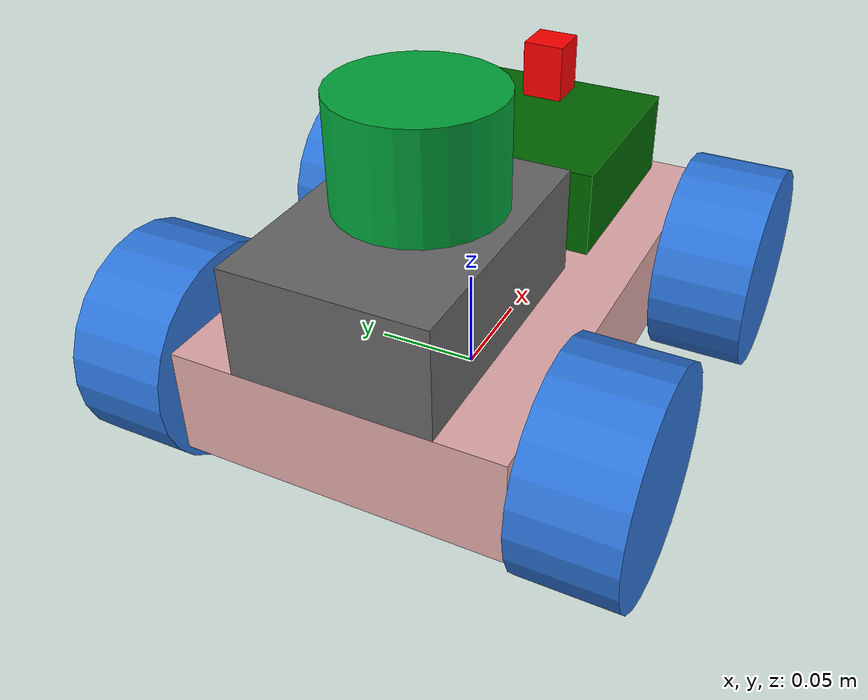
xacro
<?xml version="1.0"?>
<robot name="guenbot2_mecanum" xmlns:xacro="http://ros.org/wiki/xacro">

  <xacro:include filename="$(find guenbot2_description)/urdf/mecanum_properties.urdf.xacro" />
  <xacro:include filename="$(find guenbot2_description)/urdf/mech/base.urdf.xacro" />
  <xacro:include filename="$(find guenbot2_description)/urdf/mech/mecanum_wheel.urdf.xacro" />
  <xacro:include filename="$(find guenbot2_description)/urdf/sensors/imu.urdf.xacro" />
  <xacro:include filename="$(find guenbot2_description)/urdf/sensors/generic_laser.urdf.xacro" />
  <xacro:include filename="$(find guenbot2_description)/urdf/sensors/camera.urdf.xacro" />
  <xacro:include filename="$(find guenbot2_description)/urdf/controllers/omni_drive.urdf.xacro" />

  <xacro:base
    length="${base_length}"
    width="${base_width}"
    height="${base_height}"
    mass="${base_mass}"
    wheel_radius="${wheel_radius}"
    wheel_pos_z="${wheel_pos_z}"
/>

  <xacro:mecanum_wheel
    side="front_left"
    radius="${wheel_radius}"
    width="${wheel_width}"
    pos_x="${wheel_pos_x}"
    pos_y="${wheel_pos_y}"
    pos_z="${wheel_pos_z}"
    mass="${wheel_mass}"
  />

  <xacro:mecanum_wheel
    side="front_right"
    radius="${wheel_radius}"
    width="${wheel_width}"
    pos_x="${wheel_pos_x}"
    pos_y="${-wheel_pos_y}"
    pos_z="${wheel_pos_z}"
    mass="${wheel_mass}"
  />
  <xacro:mecanum_wheel
    side="rear_left"
    radius="${wheel_radius}"
    width="${wheel_width}"
    pos_x="${-wheel_pos_x}"
    pos_y="${wheel_pos_y}"
    pos_z="${wheel_pos_z}"
    mass="${wheel_mass}"
  />

  <xacro:mecanum_wheel
    side="rear_right"
    radius="${wheel_radius}"
    width="${wheel_width}"
    pos_x="${-wheel_pos_x}"
    pos_y="${-wheel_pos_y}"
    pos_z="${wheel_pos_z}"
    mass="${wheel_mass}"
  />

  <xacro:imu/>

  <xacro:generic_laser>
    <xacro:insert_block name="laser_pose" />
  </xacro:generic_laser>

  <xacro:omni_drive_controller/>
</robot>

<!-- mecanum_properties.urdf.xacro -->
<robot xmlns:xacro="http://ros.org/wiki/xacro">
  <xacro:property name="base_length" value="0.250" />
  <xacro:property name="base_width" value="0.150" />
  <xacro:property name="base_height" value="0.050" />
  <xacro:property name="base_mass" value="1.500" />

  <xacro:property name="wheel_radius" value="0.050" />
  <xacro:property name="wheel_width" value="0.045" />
  <xacro:property name="wheel_pos_x" value="0.085" />
  <xacro:property name="wheel_pos_y" value="0.100" />
  <xacro:property name="wheel_pos_z" value="0.010" />
  <xacro:property name="wheel_mass" value="0.100" />
  <xacro:property name="wheel_torque" value="10" />

  <xacro:property name="camera_width"  value="0.020"/>
  <xacro:property name="camera_length" value="0.020"/>
  <xacro:property name="camera_height" value="0.045"/>
  <xacro:property name="camera_mass"   value="0.100"/>

  <xacro:property name="tower_width"  value="0.090"/>
  <xacro:property name="tower_length" value="0.130"/>
  <xacro:property name="tower_height" value="0.050"/>
  <xacro:property name="tower_mass"   value="0.200"/>

  <xacro:property name="rasp_width"  value="0.105"/>
  <xacro:property name="rasp_length" value="0.095"/>
  <xacro:property name="rasp_height" value="0.040"/>
  <xacro:property name="rasp_mass"   value="0.100"/>

  <xacro:property name="laser_pose">
    <origin xyz="-0.0475 0 0.125" rpy="0 0 0"/>
  </xacro:property>

</robot>

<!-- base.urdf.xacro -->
<robot xmlns:xacro="http://ros.org/wiki/xacro">

  <xacro:macro name="base" params="length width height mass wheel_radius wheel_pos_z">
    <link name="base_footprint"/>

    <link name="base_link">
      <visual>
        <origin xyz="0 0 0" rpy="0 0 0"/>
        <geometry>
          <box size="${length} ${width} ${height}"/>
        </geometry>
        <material name="yellow">
          <color rgba="0.8784 0.6627 0.6627 1.0"/>
        </material>
      </visual>

      <collision>
        <origin xyz="0 0 0" rpy="0 0 0"/>
        <geometry>
          <box size="${length} ${width} ${height}"/>
        </geometry>
      </collision>

      <inertial>
        <origin xyz="0 0 0" rpy="0 0 0"/>
        <mass value="${mass}"/>
        <inertia ixx="${(1/12) * mass * ((width  * width)  + (height * height))}" ixy="0.0" ixz="0.0"
                 iyy="${(1/12) * mass * ((length * length) + (height * height))}" iyz="0.0"
                 izz="${(1/12) * mass * ((length * length) + (width  * width))}"/>
      </inertial>
    </link>

    <gazebo reference="base_link">
      <visual>
        <material>
          <ambient>0.8392 0.6314 0.0 1.0</ambient>
          <diffuse>0.8392 0.6314 0.0 1.0</diffuse>
          <specular>0.99 0.99 0.99 1.0</specular>
          <emissive>0.0 0.0 0.0 0.0</emissive>
        </material>
      </visual>
    </gazebo>

    <joint name="base_to_footprint" type="fixed">
      <parent link="base_footprint"/>
      <child link="base_link"/>
      <origin xyz="0 0 ${(wheel_radius - wheel_pos_z)}" rpy="0 0 0"/>
    </joint>

    <link name="rasp_link">
    <visual>
      <geometry>
        <box size="${rasp_length} ${rasp_width} ${rasp_height}"/>
      </geometry>
      <material name="Dark Green">
        <color rgba="0 0.4 0 1"/>
      </material>
    </visual>

    <collision>
      <geometry>
        <box size="${rasp_length} ${rasp_width} ${rasp_height}"/>
      </geometry>
    </collision>
  </link>

  <joint name="rasp_joint" type="fixed">
    <parent link="base_link"/>
    <child  link="rasp_link"/>
    <origin xyz="0.06 0 0.050"/>
  </joint>

  <link name="tower_link">
    <visual>
      <geometry>
        <box size="${tower_length} ${tower_width} ${tower_height}"/>
      </geometry>
      <material name="Dark Grey">
        <color rgba="0.4 0.4 0.4 1"/>
      </material>
    </visual>

    <collision>
      <geometry>
        <box size="${tower_length} ${tower_width} ${tower_height}"/>
      </geometry>
    </collision>
  </link>

  <joint name="tower_joint" type="fixed">
    <parent link="base_link"/>
    <child  link="tower_link"/>
    <origin xyz="-0.06 0 0.050"/>
  </joint>

  </xacro:macro>
</robot>

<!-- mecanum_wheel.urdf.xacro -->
<robot xmlns:xacro="http://ros.org/wiki/xacro">
  <xacro:macro name="mecanum_wheel" params="side radius width pos_x pos_y pos_z mass">
    <link name="${side}_wheel_link">
      <visual>
        <origin xyz="0 0 0" rpy="${pi/2} 0 0"/>
        <geometry>
          <cylinder radius="${radius}" length="${width}"/>
        </geometry>
        <material name="blue">
            <color rgba="0.1764 0.4588 0.8509 1.0"/>
        </material>
      </visual>
      <collision>
        <origin xyz="0 0 0" rpy="${pi/2} 0 0"/>
        <geometry>
          <cylinder radius="${radius}" length="${width}"/>
        </geometry>
      </collision>

      <inertial>
        <origin xyz="0 0 0" rpy="0 0 0"/>
        <mass value="${mass}"/>
        <inertia ixx="${(2/5) * mass * (radius * radius)}" ixy="0" ixz="0"
                 iyy="${(2/5) * mass * (radius * radius)}" iyz="0"
                 izz="${(2/5) * mass * (radius * radius)}" />
      </inertial>
    </link>

    <gazebo reference="${side}_wheel_link">
        <mu1>0.01</mu1>
        <mu2>0.01</mu2>
    </gazebo>

    <gazebo reference="${side}_wheel_link">
      <visual>
        <material>
          <ambient>0.1764 0.4588 0.8509 1.0</ambient>
          <diffuse>0.1764 0.4588 0.8509 1.0</diffuse>
          <specular>0.1764 0.4588 0.8509 1.0</specular>
          <emissive>0.0 0.0 0.0 0.0</emissive>
        </material>
      </visual>
    </gazebo>
    <joint name="${side}_wheel_joint" type="continuous">
      <axis xyz="0 1 0" />
      <parent link="base_link"/>
      <child link="${side}_wheel_link"/>
      <origin xyz="${pos_x} ${pos_y} 0" rpy="0 0 0"/>
    </joint>
  </xacro:macro>
</robot>

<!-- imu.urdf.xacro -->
<robot xmlns:xacro="http://ros.org/wiki/xacro">
  <xacro:macro name="imu">
    <link name="imu_link"/>

    <joint name="imu_to_base_link" type="fixed">
      <parent link="base_link"/>
      <child link="imu_link"/>
      <origin xyz="0 0 0" rpy="0 0 0"/>
    </joint>

    <gazebo reference="imu_link">
      <gravity>true</gravity>
      <sensor name="imu_sensor" type="imu">
      <always_on>true</always_on>
      <update_rate>20</update_rate>
      <visualize>true</visualize>
      <topic>__default_topic__</topic>
      <plugin filename="libgazebo_ros_imu_sensor.so" name="imu_plugin">
          <ros>
            <remapping>~/out:=imu/data</remapping>
          </ros>
          <topicName>imu/data</topicName>
          <bodyName>imu_link</bodyName>
          <updateRateHZ>10.0</updateRateHZ>
          <gaussianNoise>0.0</gaussianNoise>
          <xyzOffset>0 0 0</xyzOffset>
          <rpyOffset>0 0 0</rpyOffset>
          <frameName>imu_link</frameName>
          <initialOrientationAsReference>false</initialOrientationAsReference>
      </plugin>
      <pose>0 0 0 0 0 0</pose>
      </sensor>
    </gazebo>
  </xacro:macro>
</robot>

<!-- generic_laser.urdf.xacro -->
<robot xmlns:xacro="http://ros.org/wiki/xacro">
  <xacro:include filename="$(find guenbot2_description)/urdf/sensors/laser.urdf.xacro" />

  <xacro:macro name="generic_laser" params="*origin">
    <xacro:laser
      update_rate="10"
      ray_count="360"
      min_angle="-3.1416"
      max_angle="3.1416"
      min_range="0.08"
      max_range="12.0"
      frame_id="laser"
      topic_name="scan"
    >
      <xacro:insert_block name="origin" />
    </xacro:laser>
  </xacro:macro>

  <xacro:macro name="generic_base_laser" params="*origin">
    <xacro:laser
      update_rate="10"
      ray_count="360"
      min_angle="-3.1416"
      max_angle="3.1416"
      min_range="0.21"
      max_range="5.5"
      frame_id="base_laser"
      topic_name="base/scan"
    >
      <xacro:insert_block name="origin" />
    </xacro:laser>
  </xacro:macro>
</robot>

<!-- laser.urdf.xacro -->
<robot xmlns:xacro="http://ros.org/wiki/xacro">
  <xacro:property name="M_PI" value="3.1415926535897931" />
  <xacro:macro name="laser" params="*origin update_rate ray_count min_angle max_angle min_range max_range frame_id topic_name">
    <link name="${frame_id}">
      <visual>
        <origin xyz="0 0 -0.025" rpy="0 0 0"/>
        <geometry>
          <cylinder radius="0.0375" length="0.05"/>
        </geometry>
        <material name="green">
            <color rgba="0.003 0.639 0.223 1.0"/>
        </material>
      </visual>
      <collision>
        <origin xyz="0 0 -0.025" rpy="0 0 0"/>
        <geometry>
          <cylinder radius="0.0375" length="0.05"/>
        </geometry>
      </collision>

      <inertial>
        <origin xyz="0 0 0" rpy="0 0 0"/>
        <mass value="0.1"/>
        <inertia ixx="${(2/5) * 0.1 * (0.0375 * 0.0375)}" ixy="0" ixz="0"
                 iyy="${(2/5) * 0.1 * (0.0375 * 0.0375)}" iyz="0"
                 izz="${(2/5) * 0.1 * (0.0375 * 0.0375)}" />
      </inertial>
    </link>

    <gazebo reference="${frame_id}">
      <visual>
        <material>
          <ambient>0.003 0.639 0.223 1.0</ambient>
          <diffuse>0.003 0.639 0.223 1.0</diffuse>
          <specular>0.003 0.639 0.223 1.0</specular>
          <emissive>0.0 0.0 0.0 0.0</emissive>
        </material>
      </visual>
    </gazebo>

    <joint name="${frame_id}_to_base_link" type="fixed">
      <parent link="base_link"/>
      <child link="${frame_id}"/>
      <xacro:insert_block name="origin" />
    </joint>

    <gazebo reference="${frame_id}">
      <sensor type="gpu_ray" name="${frame_id}_lidar">
        <always_on>true</always_on>
        <update_rate>${update_rate}</update_rate>
        <pose>0 0 0 0 0 0</pose>
        <visualize>false</visualize>
        <ray>
          <scan>
            <horizontal>
              <samples>${ray_count}</samples>
              <resolution>1</resolution>
              <min_angle>${min_angle}</min_angle>
              <max_angle>${max_angle}</max_angle>
            </horizontal>
          </scan>
          <range>
            <min>${min_range}</min>
            <max>${max_range}</max>
            <resolution>0.01</resolution>
          </range>
        </ray>
        <plugin name="${frame_id}_lidar_controller" filename="libgazebo_ros_ray_sensor.so">
          <ros>
            <remapping>~/out:=${topic_name}</remapping>
          </ros>
          <output_type>sensor_msgs/LaserScan</output_type>
          <alwaysOn>true</alwaysOn>
          <updateRate>${update_rate}</updateRate>
          <topicName>${topic_name}</topicName>
          <frame_name>${frame_id}</frame_name>
          <output_type>sensor_msgs/LaserScan</output_type>
        </plugin>
      </sensor>
    </gazebo>
  </xacro:macro>
</robot>

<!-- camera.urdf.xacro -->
<robot xmlns:xacro="http://ros.org/wiki/xacro">

  <link name="camera_link">
    <visual>
      <geometry>
        <box size="${camera_length} ${camera_width} ${camera_height}"/>
      </geometry>
      <material name="Red">
        <color rgba="1 0 0 1"/>
      </material>
    </visual>

    <collision>
      <geometry>
        <box size="${camera_length} ${camera_width} ${camera_height}"/>
      </geometry>
    </collision>
  </link>

    <joint name="camera_joint" type="fixed">
    <parent link="base_link"/>
    <child  link="camera_link"/>
    <origin xyz="0.09 0 0.075"/>
  </joint>

  <link name="camera_link_optical"/>

  <joint name="camera_optical_joint" type="fixed">
    <parent link="camera_link"/>
    <child link="camera_link_optical"/>
    <origin xyz="0 0 0.15" rpy="${-pi/2} 0 ${-pi/2}"/>
  </joint>

  <gazebo reference="camera_link">
        <material>Gazebo/Red</material>

        <sensor name="camera" type="camera">
            <pose> 0 0 0 0 0 0 </pose>
            <visualize>true</visualize>
            <update_rate>10</update_rate>
            <camera>
                <horizontal_fov>1.089</horizontal_fov>
                <image>
                    <format>R8G8B8</format>
                    <width>640</width>
                    <height>480</height>
                </image>
                <clip>
                    <near>0.05</near>
                    <far>8.0</far>
                </clip>
            </camera>
            <plugin name="camera_controller" filename="libgazebo_ros_camera.so">
                <frame_name>camera_link_optical</frame_name>
            </plugin>
        </sensor>
    </gazebo>
</robot>
